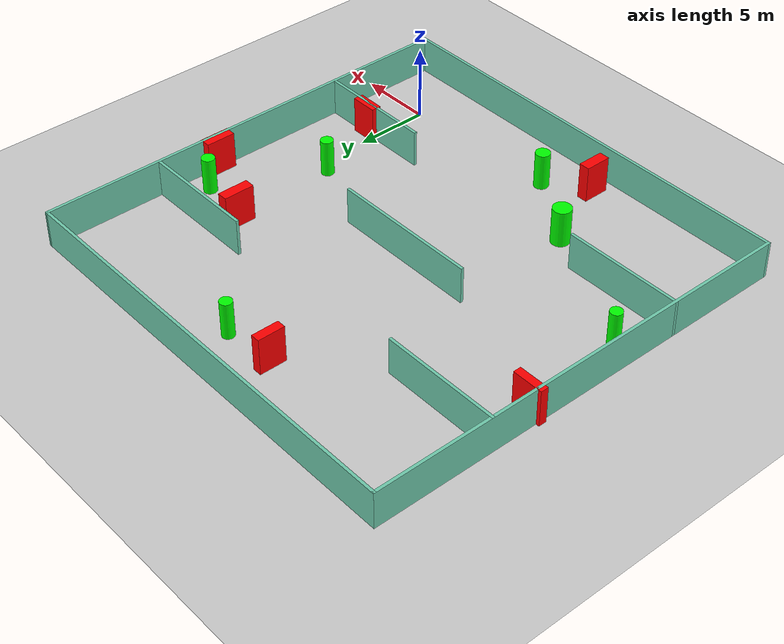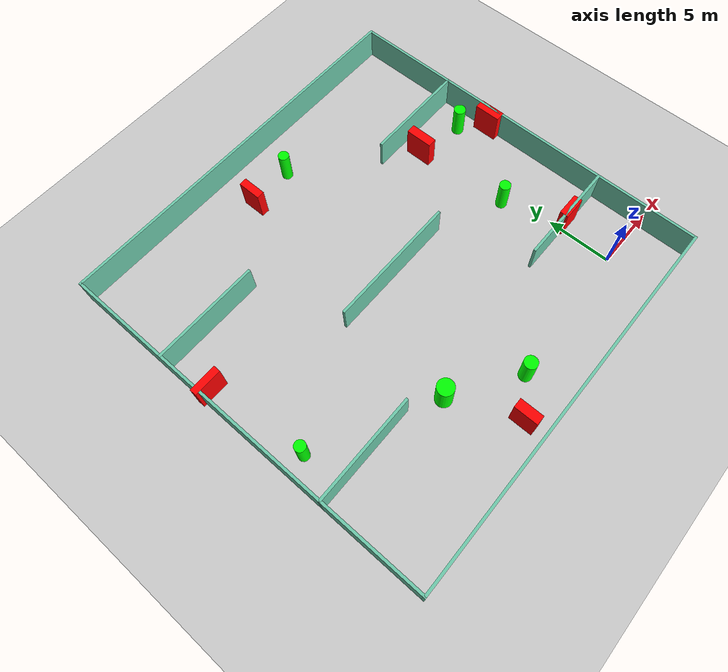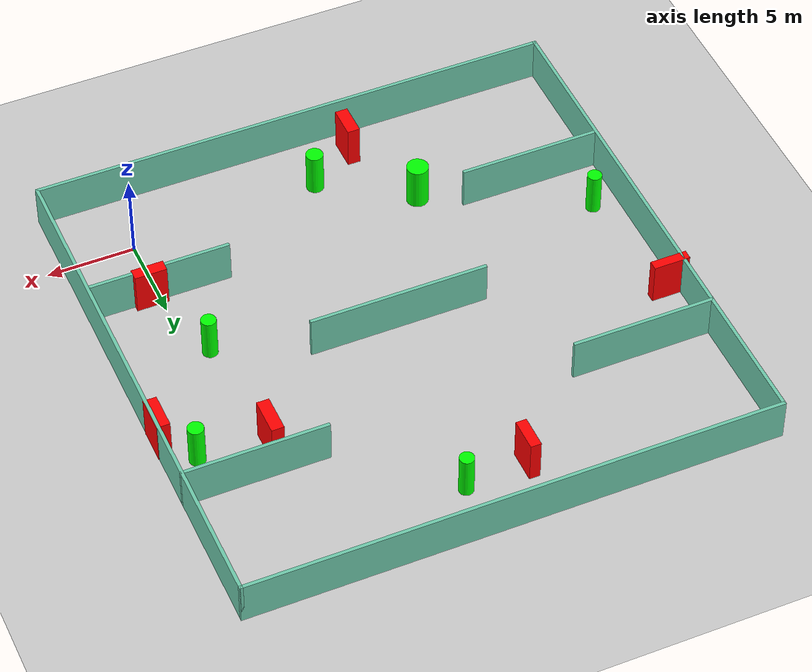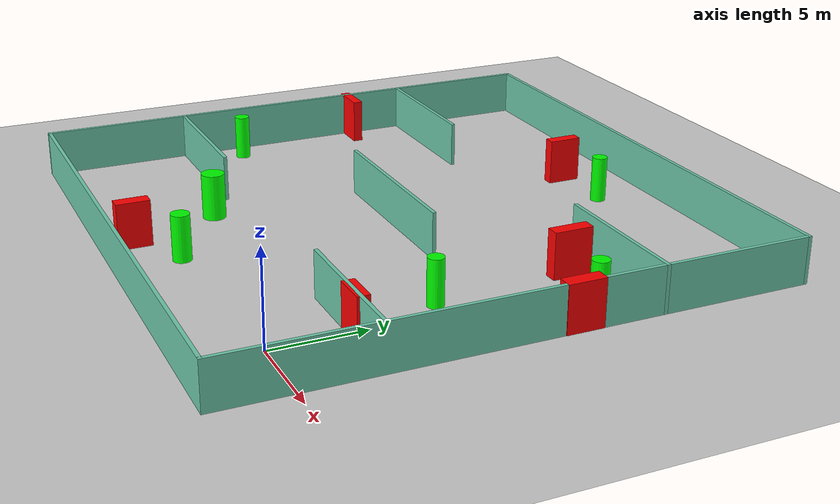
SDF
<sdf version="1.7">
 <world name="default">
  <light name="sun" type="directional">
   <pose>0 0 10 0 -0 0</pose>
   <diffuse>0.8 0.8 0.8 1</diffuse>
   <specular>0.2 0.2 0.2 1</specular>
   <attenuation>
    <range>1000</range>
    <constant>0.9</constant>
    <linear>0.01</linear>
    <quadratic>0.001</quadratic>
   </attenuation>
   <direction>-0.5 0.1 -0.9</direction>
   <spot><inner_angle>0</inner_angle><outer_angle>0</outer_angle><falloff>0</falloff></spot>
  </light>
  <model name="ground_plane">
   <static>1</static>
   <link name="link">
    <collision name="collision">
     <geometry><plane><normal>0 0 1</normal><size>100 100</size></plane></geometry>
     <surface>
      <contact><collide_bitmask>65535</collide_bitmask></contact>
      <friction><ode><mu>100</mu><mu2>50</mu2></ode></friction>
     </surface>
    </collision>
    <visual name="visual">
     <cast_shadows>0</cast_shadows>
     <geometry><plane><normal>0 0 1</normal><size>100 100</size></plane></geometry>
     <material>
      <script><uri>file://media/materials/scripts/gazebo.material</uri><name>Gazebo/Grey</name></script>
     </material>
    </visual>
   </link>
  </model>
  <gravity>0 0 -9.8</gravity>
  <magnetic_field>6e-06 2.3e-05 -4.2e-05</magnetic_field>
  <atmosphere type="adiabatic"/>
  <physics type="ode">
   <max_step_size>0.001</max_step_size>
   <real_time_factor>1</real_time_factor>
   <real_time_update_rate>1000</real_time_update_rate>
  </physics>
  <scene><ambient>0.4 0.4 0.4 1</ambient><background>0.7 0.7 0.7 1</background><shadows>1</shadows></scene>
  <spherical_coordinates>
   <surface_model>EARTH_WGS84</surface_model>
   <latitude_deg>0</latitude_deg>
   <longitude_deg>0</longitude_deg>
   <elevation>0</elevation>
   <heading_deg>0</heading_deg>
  </spherical_coordinates>
  <model name="my_base_walls">
   <link name="Wall_10">
    <collision name="Wall_10_Collision">
     <geometry><box><size>8.2 0.2 2.5</size></box></geometry>
     <pose>0 0 1.25 0 -0 0</pose>
    </collision>
    <visual name="Wall_10_Visual">
     <pose>0 0 1.25 0 -0 0</pose>
     <geometry><box><size>8.2 0.2 2.5</size></box></geometry>
     <material>
      <script><uri>file://media/materials/scripts/gazebo.material</uri><name>Gazebo/Grey</name></script>
      <ambient>0.435294 0.796078 0.67451 1</ambient>
     </material>
     <meta><layer>0</layer></meta>
    </visual>
    <pose>-11 -7 0 0 -0 0</pose>
   </link>
   <link name="Wall_12">
    <collision name="Wall_12_Collision">
     <geometry><box><size>8.2 0.2 2.5</size></box></geometry>
     <pose>0 0 1.25 0 -0 0</pose>
    </collision>
    <visual name="Wall_12_Visual">
     <pose>0 0 1.25 0 -0 0</pose>
     <geometry><box><size>8.2 0.2 2.5</size></box></geometry>
     <material>
      <script><uri>file://media/materials/scripts/gazebo.material</uri><name>Gazebo/Grey</name></script>
      <ambient>0.435294 0.796078 0.67451 1</ambient>
     </material>
     <meta><layer>0</layer></meta>
    </visual>
    <pose>-11 7 0 0 -0 0</pose>
   </link>
   <link name="Wall_14">
    <collision name="Wall_14_Collision">
     <geometry><box><size>8.2 0.2 2.5</size></box></geometry>
     <pose>0 0 1.25 0 -0 0</pose>
    </collision>
    <visual name="Wall_14_Visual">
     <pose>0 0 1.25 0 -0 0</pose>
     <geometry><box><size>8.2 0.2 2.5</size></box></geometry>
     <material>
      <script><uri>file://media/materials/scripts/gazebo.material</uri><name>Gazebo/Grey</name></script>
      <ambient>0.435294 0.796078 0.67451 1</ambient>
     </material>
     <meta><layer>0</layer></meta>
    </visual>
    <pose>11 7 0 0 -0 3.14159</pose>
   </link>
   <link name="Wall_16">
    <collision name="Wall_16_Collision">
     <geometry><box><size>10.2 0.2 2.5</size></box></geometry>
     <pose>0 0 1.25 0 -0 0</pose>
    </collision>
    <visual name="Wall_16_Visual">
     <pose>0 0 1.25 0 -0 0</pose>
     <geometry><box><size>10.2 0.2 2.5</size></box></geometry>
     <material>
      <script><uri>file://media/materials/scripts/gazebo.material</uri><name>Gazebo/Grey</name></script>
      <ambient>0.435294 0.796078 0.67451 1</ambient>
     </material>
     <meta><layer>0</layer></meta>
    </visual>
    <pose>0 0 0 0 -0 3.14159</pose>
   </link>
   <link name="Wall_2">
    <collision name="Wall_2_Collision">
     <geometry><box><size>30.2 0.2 2.5</size></box></geometry>
     <pose>0 0 1.25 0 -0 0</pose>
    </collision>
    <visual name="Wall_2_Visual">
     <pose>0 0 1.25 0 -0 0</pose>
     <geometry><box><size>30.2 0.2 2.5</size></box></geometry>
     <material>
      <script><uri>file://media/materials/scripts/gazebo.material</uri><name>Gazebo/Grey</name></script>
      <ambient>0.435294 0.796078 0.67451 1</ambient>
     </material>
     <meta><layer>0</layer></meta>
    </visual>
    <pose>0 -15 0 0 -0 3.14159</pose>
   </link>
   <link name="Wall_3">
    <collision name="Wall_3_Collision">
     <geometry><box><size>30.2 0.2 2.5</size></box></geometry>
     <pose>0 0 1.25 0 -0 0</pose>
    </collision>
    <visual name="Wall_3_Visual">
     <pose>0 0 1.25 0 -0 0</pose>
     <geometry><box><size>30.2 0.2 2.5</size></box></geometry>
     <material>
      <script><uri>file://media/materials/scripts/gazebo.material</uri><name>Gazebo/Grey</name></script>
      <ambient>0.435294 0.796078 0.67451 1</ambient>
     </material>
     <meta><layer>0</layer></meta>
    </visual>
    <pose>-15 0 0 0 -0 1.5708</pose>
   </link>
   <link name="Wall_4">
    <collision name="Wall_4_Collision">
     <geometry><box><size>30.2 0.2 2.5</size></box></geometry>
     <pose>0 0 1.25 0 -0 0</pose>
    </collision>
    <visual name="Wall_4_Visual">
     <pose>0 0 1.25 0 -0 0</pose>
     <geometry><box><size>30.2 0.2 2.5</size></box></geometry>
     <material>
      <script><uri>file://media/materials/scripts/gazebo.material</uri><name>Gazebo/Grey</name></script>
      <ambient>0.435294 0.796078 0.67451 1</ambient>
     </material>
     <meta><layer>0</layer></meta>
    </visual>
    <pose>0 15 0 0 -0 0</pose>
   </link>
   <link name="Wall_6">
    <collision name="Wall_6_Collision">
     <geometry><box><size>30.2 0.2 2.5</size></box></geometry>
     <pose>0 0 1.25 0 -0 0</pose>
    </collision>
    <visual name="Wall_6_Visual">
     <pose>0 0 1.25 0 -0 0</pose>
     <geometry><box><size>30.2 0.2 2.5</size></box></geometry>
     <material>
      <script><uri>file://media/materials/scripts/gazebo.material</uri><name>Gazebo/Grey</name></script>
      <ambient>0.435294 0.796078 0.67451 1</ambient>
     </material>
     <meta><layer>0</layer></meta>
    </visual>
    <pose>15 0 0 0 -0 1.5708</pose>
   </link>
   <link name="Wall_8">
    <collision name="Wall_8_Collision">
     <geometry><box><size>8.2 0.2 2.5</size></box></geometry>
     <pose>0 0 1.25 0 -0 0</pose>
    </collision>
    <visual name="Wall_8_Visual">
     <pose>0 0 1.25 0 -0 0</pose>
     <geometry><box><size>8.2 0.2 2.5</size></box></geometry>
     <material>
      <script><uri>file://media/materials/scripts/gazebo.material</uri><name>Gazebo/Grey</name></script>
      <ambient>0.435294 0.796078 0.67451 1</ambient>
     </material>
     <meta><layer>0</layer></meta>
    </visual>
    <pose>11 -7 0 0 -0 3.14159</pose>
   </link>
   <static>1</static>
   <pose>-11 11 0 0 -0 0</pose>
  </model>
  <model name="cylinder1">
   <static>1</static>
   <link name="link">
    <inertial>
     <mass>1</mass>
     <inertia><ixx>0.5</ixx><ixy>0</ixy><ixz>0</ixz><iyy>0.5</iyy><iyz>0</iyz><izz>1</izz></inertia>
    </inertial>
    <collision name="collision">
     <geometry><cylinder><radius>0.49543162738887947</radius><length>2.5</length></cylinder></geometry>
    </collision>
    <visual name="visual">
     <geometry><cylinder><radius>0.49543162738887947</radius><length>2.5</length></cylinder></geometry>
     <material>
      <ambient>0 1 0 1</ambient>
      <diffuse>0 1 0 1</diffuse>
      <specular>0.1 0.1 0.1 1</specular>
      <emissive>0 0 0 0</emissive>
     </material>
    </visual>
   </link>
   <pose>-10.945322020766705 -0.543866061558214 1.25 0 0 0</pose>
  </model>
  <model name="cylinder2">
   <static>1</static>
   <link name="link">
    <inertial>
     <mass>1</mass>
     <inertia><ixx>0.5</ixx><ixy>0</ixy><ixz>0</ixz><iyy>0.5</iyy><iyz>0</iyz><izz>1</izz></inertia>
    </inertial>
    <collision name="collision">
     <geometry><cylinder><radius>0.42916329410365317</radius><length>2.5</length></cylinder></geometry>
    </collision>
    <visual name="visual">
     <geometry><cylinder><radius>0.42916329410365317</radius><length>2.5</length></cylinder></geometry>
     <material>
      <ambient>0 1 0 1</ambient>
      <diffuse>0 1 0 1</diffuse>
      <specular>0.1 0.1 0.1 1</specular>
      <emissive>0 0 0 0</emissive>
     </material>
    </visual>
   </link>
   <pose>-1.047629069092416 8.746841496550015 1.25 0 0 0</pose>
  </model>
  <model name="cylinder3">
   <static>1</static>
   <link name="link">
    <inertial>
     <mass>1</mass>
     <inertia><ixx>0.5</ixx><ixy>0</ixy><ixz>0</ixz><iyy>0.5</iyy><iyz>0</iyz><izz>1</izz></inertia>
    </inertial>
    <collision name="collision">
     <geometry><cylinder><radius>0.40997411431287945</radius><length>2.5</length></cylinder></geometry>
    </collision>
    <visual name="visual">
     <geometry><cylinder><radius>0.40997411431287945</radius><length>2.5</length></cylinder></geometry>
     <material>
      <ambient>0 1 0 1</ambient>
      <diffuse>0 1 0 1</diffuse>
      <specular>0.1 0.1 0.1 1</specular>
      <emissive>0 0 0 0</emissive>
     </material>
    </visual>
   </link>
   <pose>-24.41309806596771 7.101620146156838 1.25 0 0 0</pose>
  </model>
  <model name="cylinder4">
   <static>1</static>
   <link name="link">
    <inertial>
     <mass>1</mass>
     <inertia><ixx>0.5</ixx><ixy>0</ixy><ixz>0</ixz><iyy>0.5</iyy><iyz>0</iyz><izz>1</izz></inertia>
    </inertial>
    <collision name="collision">
     <geometry><cylinder><radius>0.6251903853956546</radius><length>2.5</length></cylinder></geometry>
    </collision>
    <visual name="visual">
     <geometry><cylinder><radius>0.6251903853956546</radius><length>2.5</length></cylinder></geometry>
     <material>
      <ambient>0 1 0 1</ambient>
      <diffuse>0 1 0 1</diffuse>
      <specular>0.1 0.1 0.1 1</specular>
      <emissive>0 0 0 0</emissive>
     </material>
    </visual>
   </link>
   <pose>-15.770665193649306 2.620994640320082 1.25 0 0 0</pose>
  </model>
  <model name="cylinder5">
   <static>1</static>
   <link name="link">
    <inertial>
     <mass>1</mass>
     <inertia><ixx>0.5</ixx><ixy>0</ixy><ixz>0</ixz><iyy>0.5</iyy><iyz>0</iyz><izz>1</izz></inertia>
    </inertial>
    <collision name="collision">
     <geometry><cylinder><radius>0.45211896260618567</radius><length>2.5</length></cylinder></geometry>
    </collision>
    <visual name="visual">
     <geometry><cylinder><radius>0.45211896260618567</radius><length>2.5</length></cylinder></geometry>
     <material>
      <ambient>0 1 0 1</ambient>
      <diffuse>0 1 0 1</diffuse>
      <specular>0.1 0.1 0.1 1</specular>
      <emissive>0 0 0 0</emissive>
     </material>
    </visual>
   </link>
   <pose>2.297525914667638 15.508415060127675 1.25 0 0 0</pose>
  </model>
  <model name="cylinder6">
   <static>1</static>
   <link name="link">
    <inertial>
     <mass>1</mass>
     <inertia><ixx>0.5</ixx><ixy>0</ixy><ixz>0</ixz><iyy>0.5</iyy><iyz>0</iyz><izz>1</izz></inertia>
    </inertial>
    <collision name="collision">
     <geometry><cylinder><radius>0.4107216581855968</radius><length>2.5</length></cylinder></geometry>
    </collision>
    <visual name="visual">
     <geometry><cylinder><radius>0.4107216581855968</radius><length>2.5</length></cylinder></geometry>
     <material>
      <ambient>0 1 0 1</ambient>
      <diffuse>0 1 0 1</diffuse>
      <specular>0.1 0.1 0.1 1</specular>
      <emissive>0 0 0 0</emissive>
     </material>
    </visual>
   </link>
   <pose>-9.558927820453475 22.861224116924816 1.25 0 0 0</pose>
  </model>
  <model name="box1">
   <static>1</static>
   <link name="link">
    <inertial>
     <mass>1</mass>
     <inertia><ixx>0.083</ixx><ixy>0</ixy><ixz>0</ixz><iyy>0.083</iyy><iyz>0</iyz><izz>0.083</izz></inertia>
    </inertial>
    <collision name="collision">
     <geometry><box><size>0.6069754773767875 1.822696433566445 2.5</size></box></geometry>
    </collision>
    <visual name="visual">
     <geometry><box><size>0.6069754773767875 1.822696433566445 2.5</size></box></geometry>
     <material>
      <ambient>1 0 0 1</ambient>
      <diffuse>1 0 0 1</diffuse>
      <specular>0.1 0.1 0.1 1</specular>
      <emissive>0 0 0 0</emissive>
     </material>
    </visual>
    <sensor name="my_contact" type="contact">
     <contact><collision>box_collision</collision><topic>__default_topic__</topic></contact>
    </sensor>
   </link>
   <pose>-13.111501474437965 22.617174868740463 1.25 0 0 0</pose>
  </model>
  <model name="box2">
   <static>1</static>
   <link name="link">
    <inertial>
     <mass>1</mass>
     <inertia><ixx>0.083</ixx><ixy>0</ixy><ixz>0</ixz><iyy>0.083</iyy><iyz>0</iyz><izz>0.083</izz></inertia>
    </inertial>
    <collision name="collision">
     <geometry><box><size>0.7546383629354876 2.0011603361881036 2.5</size></box></geometry>
    </collision>
    <visual name="visual">
     <geometry><box><size>0.7546383629354876 2.0011603361881036 2.5</size></box></geometry>
     <material>
      <ambient>1 0 0 1</ambient>
      <diffuse>1 0 0 1</diffuse>
      <specular>0.1 0.1 0.1 1</specular>
      <emissive>0 0 0 0</emissive>
     </material>
    </visual>
    <sensor name="my_contact" type="contact">
     <contact><collision>box_collision</collision><topic>__default_topic__</topic></contact>
    </sensor>
   </link>
   <pose>3.751757640902401 13.721186965074754 1.25 0 0 0</pose>
  </model>
  <model name="box3">
   <static>1</static>
   <link name="link">
    <inertial>
     <mass>1</mass>
     <inertia><ixx>0.083</ixx><ixy>0</ixy><ixz>0</ixz><iyy>0.083</iyy><iyz>0</iyz><izz>0.083</izz></inertia>
    </inertial>
    <collision name="collision">
     <geometry><box><size>0.7236945022391316 1.7941244951901512 2.5</size></box></geometry>
    </collision>
    <visual name="visual">
     <geometry><box><size>0.7236945022391316 1.7941244951901512 2.5</size></box></geometry>
     <material>
      <ambient>1 0 0 1</ambient>
      <diffuse>1 0 0 1</diffuse>
      <specular>0.1 0.1 0.1 1</specular>
      <emissive>0 0 0 0</emissive>
     </material>
    </visual>
    <sensor name="my_contact" type="contact">
     <contact><collision>box_collision</collision><topic>__default_topic__</topic></contact>
    </sensor>
   </link>
   <pose>-13.668182128905226 -2.3047573672278108 1.25 0 0 0</pose>
  </model>
  <model name="box4">
   <static>1</static>
   <link name="link">
    <inertial>
     <mass>1</mass>
     <inertia><ixx>0.083</ixx><ixy>0</ixy><ixz>0</ixz><iyy>0.083</iyy><iyz>0</iyz><izz>0.083</izz></inertia>
    </inertial>
    <collision name="collision">
     <geometry><box><size>1.8252068862377246 0.6620190553445183 2.5</size></box></geometry>
    </collision>
    <visual name="visual">
     <geometry><box><size>1.8252068862377246 0.6620190553445183 2.5</size></box></geometry>
     <material>
      <ambient>1 0 0 1</ambient>
      <diffuse>1 0 0 1</diffuse>
      <specular>0.1 0.1 0.1 1</specular>
      <emissive>0 0 0 0</emissive>
     </material>
    </visual>
    <sensor name="my_contact" type="contact">
     <contact><collision>box_collision</collision><topic>__default_topic__</topic></contact>
    </sensor>
   </link>
   <pose>0.5418303470580383 4.086045228585695 1.25 0 0 0</pose>
  </model>
  <model name="box5">
   <static>1</static>
   <link name="link">
    <inertial>
     <mass>1</mass>
     <inertia><ixx>0.083</ixx><ixy>0</ixy><ixz>0</ixz><iyy>0.083</iyy><iyz>0</iyz><izz>0.083</izz></inertia>
    </inertial>
    <collision name="collision">
     <geometry><box><size>0.7116149650316352 2.094435394620365 2.5</size></box></geometry>
    </collision>
    <visual name="visual">
     <geometry><box><size>0.7116149650316352 2.094435394620365 2.5</size></box></geometry>
     <material>
      <ambient>1 0 0 1</ambient>
      <diffuse>1 0 0 1</diffuse>
      <specular>0.1 0.1 0.1 1</specular>
      <emissive>0 0 0 0</emissive>
     </material>
    </visual>
    <sensor name="my_contact" type="contact">
     <contact><collision>box_collision</collision><topic>__default_topic__</topic></contact>
    </sensor>
   </link>
   <pose>-1.5279440429881213 16.206298720616914 1.25 0 0 0</pose>
  </model>
  <model name="box6">
   <static>1</static>
   <link name="link">
    <inertial>
     <mass>1</mass>
     <inertia><ixx>0.083</ixx><ixy>0</ixy><ixz>0</ixz><iyy>0.083</iyy><iyz>0</iyz><izz>0.083</izz></inertia>
    </inertial>
    <collision name="collision">
     <geometry><box><size>2.096447036229045 0.5319478302960003 2.5</size></box></geometry>
    </collision>
    <visual name="visual">
     <geometry><box><size>2.096447036229045 0.5319478302960003 2.5</size></box></geometry>
     <material>
      <ambient>1 0 0 1</ambient>
      <diffuse>1 0 0 1</diffuse>
      <specular>0.1 0.1 0.1 1</specular>
      <emissive>0 0 0 0</emissive>
     </material>
    </visual>
    <sensor name="my_contact" type="contact">
     <contact><collision>box_collision</collision><topic>__default_topic__</topic></contact>
    </sensor>
   </link>
   <pose>-25.27319152532491 14.553229968782219 1.25 0 0 0</pose>
  </model>
 </world>
</sdf>
